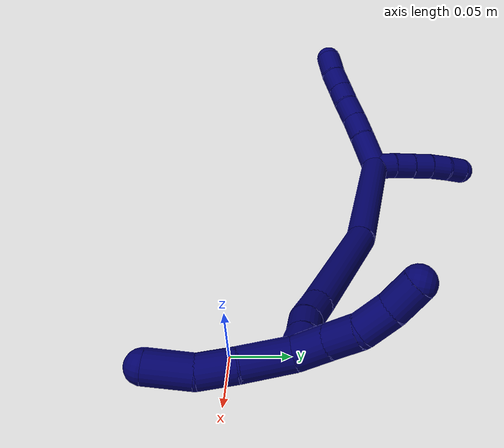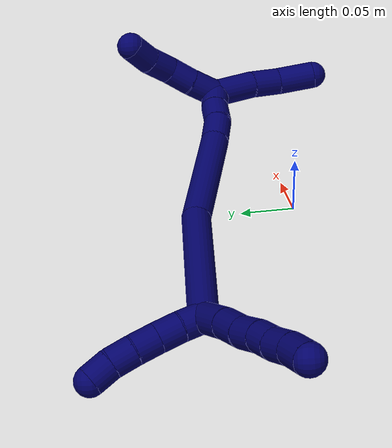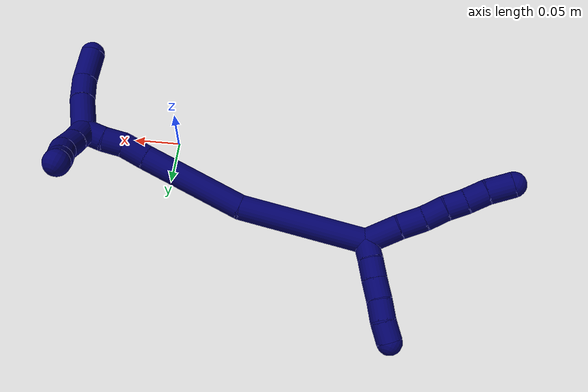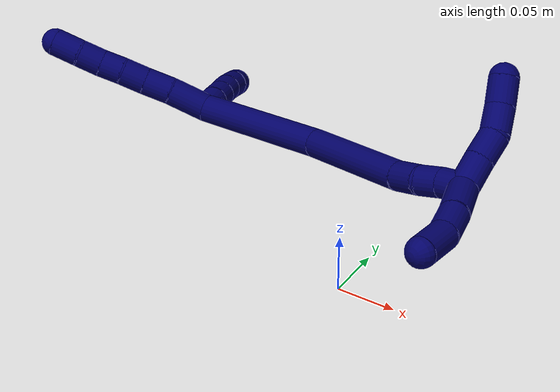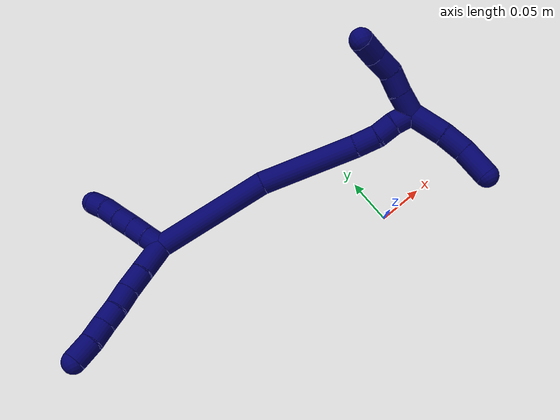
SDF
<sdf version="1.7">
 <world name="default">
  <model name="7">
   <static>0</static>
   <link name="7">
    <collision name="collision-cylinder-e_1_2_8">
     <pose>-0.013912 -0.005149 -0.010027 2.66721 -0.88986 -2.20315</pose>
     <geometry><cylinder><radius>0.0125</radius><length>0.035811</length></cylinder></geometry>
     <surface>
      <friction><ode><mu>1.16</mu><mu2>1.16</mu2><slip1>0</slip1><slip2>0</slip2></ode></friction>
      <contact><ode><kp>1e+06</kp><kd>1</kd><max_vel>0</max_vel><min_depth>0.001</min_depth></ode></contact>
     </surface>
    </collision>
    <visual name="visual-cylinder-e_1_2_8">
     <pose>-0.013912 -0.005149 -0.010027 2.66721 -0.88986 -2.20315</pose>
     <geometry><cylinder><radius>0.0125</radius><length>0.035811</length></cylinder></geometry>
     <material><ambient>0.003922 0 0.403922 1</ambient></material>
    </visual>
    <collision name="collision-cylinder-e_2_8_9">
     <pose>-0.038042 -0.012663 -0.026885 2.80829 -0.955085 -2.51304</pose>
     <geometry><cylinder><radius>0.0125</radius><length>0.025032</length></cylinder></geometry>
     <surface>
      <friction><ode><mu>1.16</mu><mu2>1.16</mu2><slip1>0</slip1><slip2>0</slip2></ode></friction>
      <contact><ode><kp>1e+06</kp><kd>1</kd><max_vel>0</max_vel><min_depth>0.001</min_depth></ode></contact>
     </surface>
    </collision>
    <visual name="visual-cylinder-e_2_8_9">
     <pose>-0.038042 -0.012663 -0.026885 2.80829 -0.955085 -2.51304</pose>
     <geometry><cylinder><radius>0.0125</radius><length>0.025032</length></cylinder></geometry>
     <material><ambient>0.003922 0 0.403922 1</ambient></material>
    </visual>
    <collision name="collision-cylinder-e_3_9_10">
     <pose>-0.056572 -0.018139 -0.040495 2.71134 -0.839453 -2.23091</pose>
     <geometry><cylinder><radius>0.0125</radius><length>0.022337</length></cylinder></geometry>
     <surface>
      <friction><ode><mu>1.16</mu><mu2>1.16</mu2><slip1>0</slip1><slip2>0</slip2></ode></friction>
      <contact><ode><kp>1e+06</kp><kd>1</kd><max_vel>0</max_vel><min_depth>0.001</min_depth></ode></contact>
     </surface>
    </collision>
    <visual name="visual-cylinder-e_3_9_10">
     <pose>-0.056572 -0.018139 -0.040495 2.71134 -0.839453 -2.23091</pose>
     <geometry><cylinder><radius>0.0125</radius><length>0.022337</length></cylinder></geometry>
     <material><ambient>0.003922 0 0.403922 1</ambient></material>
    </visual>
    <collision name="collision-cylinder-e_4_10_11">
     <pose>-0.073154 -0.023059 -0.052784 2.82439 -0.959207 -2.54491</pose>
     <geometry><cylinder><radius>0.0125</radius><length>0.020201</length></cylinder></geometry>
     <surface>
      <friction><ode><mu>1.16</mu><mu2>1.16</mu2><slip1>0</slip1><slip2>0</slip2></ode></friction>
      <contact><ode><kp>1e+06</kp><kd>1</kd><max_vel>0</max_vel><min_depth>0.001</min_depth></ode></contact>
     </surface>
    </collision>
    <visual name="visual-cylinder-e_4_10_11">
     <pose>-0.073154 -0.023059 -0.052784 2.82439 -0.959207 -2.54491</pose>
     <geometry><cylinder><radius>0.0125</radius><length>0.020201</length></cylinder></geometry>
     <material><ambient>0.003922 0 0.403922 1</ambient></material>
    </visual>
    <collision name="collision-cylinder-e_5_11_12">
     <pose>-0.089661 -0.027874 -0.064545 2.6933 -0.870899 -2.23031</pose>
     <geometry><cylinder><radius>0.0125</radius><length>0.021536</length></cylinder></geometry>
     <surface>
      <friction><ode><mu>1.16</mu><mu2>1.16</mu2><slip1>0</slip1><slip2>0</slip2></ode></friction>
      <contact><ode><kp>1e+06</kp><kd>1</kd><max_vel>0</max_vel><min_depth>0.001</min_depth></ode></contact>
     </surface>
    </collision>
    <visual name="visual-cylinder-e_5_11_12">
     <pose>-0.089661 -0.027874 -0.064545 2.6933 -0.870899 -2.23031</pose>
     <geometry><cylinder><radius>0.0125</radius><length>0.021536</length></cylinder></geometry>
     <material><ambient>0.003922 0 0.403922 1</ambient></material>
    </visual>
    <collision name="collision-cylinder-e_6_12_6">
     <pose>-0.108607 -0.033514 -0.076766 2.7262 -1.02359 -2.42377</pose>
     <geometry><cylinder><radius>0.0125</radius><length>0.025083</length></cylinder></geometry>
     <surface>
      <friction><ode><mu>1.16</mu><mu2>1.16</mu2><slip1>0</slip1><slip2>0</slip2></ode></friction>
      <contact><ode><kp>1e+06</kp><kd>1</kd><max_vel>0</max_vel><min_depth>0.001</min_depth></ode></contact>
     </surface>
    </collision>
    <visual name="visual-cylinder-e_6_12_6">
     <pose>-0.108607 -0.033514 -0.076766 2.7262 -1.02359 -2.42377</pose>
     <geometry><cylinder><radius>0.0125</radius><length>0.025083</length></cylinder></geometry>
     <material><ambient>0.003922 0 0.403922 1</ambient></material>
    </visual>
    <collision name="collision-cylinder-e_1_2_13">
     <pose>-0.005074 0.000542 0.0086 -0.062931 -0.532153 0.017156</pose>
     <geometry><cylinder><radius>0.0125</radius><length>0.02</length></cylinder></geometry>
     <surface>
      <friction><ode><mu>1.16</mu><mu2>1.16</mu2><slip1>0</slip1><slip2>0</slip2></ode></friction>
      <contact><ode><kp>1e+06</kp><kd>1</kd><max_vel>0</max_vel><min_depth>0.001</min_depth></ode></contact>
     </surface>
    </collision>
    <visual name="visual-cylinder-e_1_2_13">
     <pose>-0.005074 0.000542 0.0086 -0.062931 -0.532153 0.017156</pose>
     <geometry><cylinder><radius>0.0125</radius><length>0.02</length></cylinder></geometry>
     <material><ambient>0.003922 0 0.403922 1</ambient></material>
    </visual>
    <collision name="collision-cylinder-e_2_13_14">
     <pose>-0.014864 0.002569 0.025892 -0.16925 -0.491101 0.042511</pose>
     <geometry><cylinder><radius>0.0125</radius><length>0.02</length></cylinder></geometry>
     <surface>
      <friction><ode><mu>1.16</mu><mu2>1.16</mu2><slip1>0</slip1><slip2>0</slip2></ode></friction>
      <contact><ode><kp>1e+06</kp><kd>1</kd><max_vel>0</max_vel><min_depth>0.001</min_depth></ode></contact>
     </surface>
    </collision>
    <visual name="visual-cylinder-e_2_13_14">
     <pose>-0.014864 0.002569 0.025892 -0.16925 -0.491101 0.042511</pose>
     <geometry><cylinder><radius>0.0125</radius><length>0.02</length></cylinder></geometry>
     <material><ambient>0.003922 0 0.403922 1</ambient></material>
    </visual>
    <collision name="collision-cylinder-e_3_14_15">
     <pose>-0.0246 0.00564 0.043087 -0.184304 -0.525947 0.049747</pose>
     <geometry><cylinder><radius>0.0125</radius><length>0.02</length></cylinder></geometry>
     <surface>
      <friction><ode><mu>1.16</mu><mu2>1.16</mu2><slip1>0</slip1><slip2>0</slip2></ode></friction>
      <contact><ode><kp>1e+06</kp><kd>1</kd><max_vel>0</max_vel><min_depth>0.001</min_depth></ode></contact>
     </surface>
    </collision>
    <visual name="visual-cylinder-e_3_14_15">
     <pose>-0.0246 0.00564 0.043087 -0.184304 -0.525947 0.049747</pose>
     <geometry><cylinder><radius>0.0125</radius><length>0.02</length></cylinder></geometry>
     <material><ambient>0.003922 0 0.403922 1</ambient></material>
    </visual>
    <collision name="collision-cylinder-e_4_15_16">
     <pose>-0.034177 0.009641 0.060156 -0.274947 -0.473124 0.066679</pose>
     <geometry><cylinder><radius>0.0125</radius><length>0.02</length></cylinder></geometry>
     <surface>
      <friction><ode><mu>1.16</mu><mu2>1.16</mu2><slip1>0</slip1><slip2>0</slip2></ode></friction>
      <contact><ode><kp>1e+06</kp><kd>1</kd><max_vel>0</max_vel><min_depth>0.001</min_depth></ode></contact>
     </surface>
    </collision>
    <visual name="visual-cylinder-e_4_15_16">
     <pose>-0.034177 0.009641 0.060156 -0.274947 -0.473124 0.066679</pose>
     <geometry><cylinder><radius>0.0125</radius><length>0.02</length></cylinder></geometry>
     <material><ambient>0.003922 0 0.403922 1</ambient></material>
    </visual>
    <collision name="collision-cylinder-e_5_16_5">
     <pose>-0.044116 0.015692 0.076327 -0.445761 -0.568305 0.132194</pose>
     <geometry><cylinder><radius>0.0125</radius><length>0.02</length></cylinder></geometry>
     <surface>
      <friction><ode><mu>1.16</mu><mu2>1.16</mu2><slip1>0</slip1><slip2>0</slip2></ode></friction>
      <contact><ode><kp>1e+06</kp><kd>1</kd><max_vel>0</max_vel><min_depth>0.001</min_depth></ode></contact>
     </surface>
    </collision>
    <visual name="visual-cylinder-e_5_16_5">
     <pose>-0.044116 0.015692 0.076327 -0.445761 -0.568305 0.132194</pose>
     <geometry><cylinder><radius>0.0125</radius><length>0.02</length></cylinder></geometry>
     <material><ambient>0.003922 0 0.403922 1</ambient></material>
    </visual>
    <collision name="collision-cylinder-e_1_2_17">
     <pose>0.062415 -0.010578 0.00613 1.04557 1.37736 0.885816</pose>
     <geometry><cylinder><radius>0.0125</radius><length>0.127203</length></cylinder></geometry>
     <surface>
      <friction><ode><mu>1.16</mu><mu2>1.16</mu2><slip1>0</slip1><slip2>0</slip2></ode></friction>
      <contact><ode><kp>1e+06</kp><kd>1</kd><max_vel>0</max_vel><min_depth>0.001</min_depth></ode></contact>
     </surface>
    </collision>
    <visual name="visual-cylinder-e_1_2_17">
     <pose>0.062415 -0.010578 0.00613 1.04557 1.37736 0.885816</pose>
     <geometry><cylinder><radius>0.0125</radius><length>0.127203</length></cylinder></geometry>
     <material><ambient>0.003922 0 0.403922 1</ambient></material>
    </visual>
    <collision name="collision-cylinder-e_2_17_18">
     <pose>0.176136 -0.033237 0.006174 2.03749 1.313 1.79286</pose>
     <geometry><cylinder><radius>0.0125</radius><length>0.106118</length></cylinder></geometry>
     <surface>
      <friction><ode><mu>1.16</mu><mu2>1.16</mu2><slip1>0</slip1><slip2>0</slip2></ode></friction>
      <contact><ode><kp>1e+06</kp><kd>1</kd><max_vel>0</max_vel><min_depth>0.001</min_depth></ode></contact>
     </surface>
    </collision>
    <visual name="visual-cylinder-e_2_17_18">
     <pose>0.176136 -0.033237 0.006174 2.03749 1.313 1.79286</pose>
     <geometry><cylinder><radius>0.0125</radius><length>0.106118</length></cylinder></geometry>
     <material><ambient>0.003922 0 0.403922 1</ambient></material>
    </visual>
    <collision name="collision-cylinder-e_3_18_19">
     <pose>0.23915 -0.049776 -0.001088 1.82867 1.19568 1.44765</pose>
     <geometry><cylinder><radius>0.0125</radius><length>0.025165</length></cylinder></geometry>
     <surface>
      <friction><ode><mu>1.16</mu><mu2>1.16</mu2><slip1>0</slip1><slip2>0</slip2></ode></friction>
      <contact><ode><kp>1e+06</kp><kd>1</kd><max_vel>0</max_vel><min_depth>0.001</min_depth></ode></contact>
     </surface>
    </collision>
    <visual name="visual-cylinder-e_3_18_19">
     <pose>0.23915 -0.049776 -0.001088 1.82867 1.19568 1.44765</pose>
     <geometry><cylinder><radius>0.0125</radius><length>0.025165</length></cylinder></geometry>
     <material><ambient>0.003922 0 0.403922 1</ambient></material>
    </visual>
    <collision name="collision-cylinder-e_4_19_20">
     <pose>0.260559 -0.057542 -0.000626 1.11131 1.20717 0.80893</pose>
     <geometry><cylinder><radius>0.0125</radius><length>0.020761</length></cylinder></geometry>
     <surface>
      <friction><ode><mu>1.16</mu><mu2>1.16</mu2><slip1>0</slip1><slip2>0</slip2></ode></friction>
      <contact><ode><kp>1e+06</kp><kd>1</kd><max_vel>0</max_vel><min_depth>0.001</min_depth></ode></contact>
     </surface>
    </collision>
    <visual name="visual-cylinder-e_4_19_20">
     <pose>0.260559 -0.057542 -0.000626 1.11131 1.20717 0.80893</pose>
     <geometry><cylinder><radius>0.0125</radius><length>0.020761</length></cylinder></geometry>
     <material><ambient>0.003922 0 0.403922 1</ambient></material>
    </visual>
    <collision name="collision-cylinder-e_5_20_1">
     <pose>0.280249 -0.063665 0.001004 1.57328 1.29623 1.29862</pose>
     <geometry><cylinder><radius>0.0125</radius><length>0.020752</length></cylinder></geometry>
     <surface>
      <friction><ode><mu>1.16</mu><mu2>1.16</mu2><slip1>0</slip1><slip2>0</slip2></ode></friction>
      <contact><ode><kp>1e+06</kp><kd>1</kd><max_vel>0</max_vel><min_depth>0.001</min_depth></ode></contact>
     </surface>
    </collision>
    <visual name="visual-cylinder-e_5_20_1">
     <pose>0.280249 -0.063665 0.001004 1.57328 1.29623 1.29862</pose>
     <geometry><cylinder><radius>0.0125</radius><length>0.020752</length></cylinder></geometry>
     <material><ambient>0.003922 0 0.403922 1</ambient></material>
    </visual>
    <collision name="collision-cylinder-e_1_1_21">
     <pose>0.287494 -0.074262 0.011718 0.627944 -0.204119 -0.066487</pose>
     <geometry><cylinder><radius>0.0125</radius><length>0.02706</length></cylinder></geometry>
     <surface>
      <friction><ode><mu>1.16</mu><mu2>1.16</mu2><slip1>0</slip1><slip2>0</slip2></ode></friction>
      <contact><ode><kp>1e+06</kp><kd>1</kd><max_vel>0</max_vel><min_depth>0.001</min_depth></ode></contact>
     </surface>
    </collision>
    <visual name="visual-cylinder-e_1_1_21">
     <pose>0.287494 -0.074262 0.011718 0.627944 -0.204119 -0.066487</pose>
     <geometry><cylinder><radius>0.0125</radius><length>0.02706</length></cylinder></geometry>
     <material><ambient>0.003922 0 0.403922 1</ambient></material>
    </visual>
    <collision name="collision-cylinder-e_2_21_22">
     <pose>0.28315 -0.089445 0.031685 0.674989 -0.134419 -0.047233</pose>
     <geometry><cylinder><radius>0.0125</radius><length>0.0239</length></cylinder></geometry>
     <surface>
      <friction><ode><mu>1.16</mu><mu2>1.16</mu2><slip1>0</slip1><slip2>0</slip2></ode></friction>
      <contact><ode><kp>1e+06</kp><kd>1</kd><max_vel>0</max_vel><min_depth>0.001</min_depth></ode></contact>
     </surface>
    </collision>
    <visual name="visual-cylinder-e_2_21_22">
     <pose>0.28315 -0.089445 0.031685 0.674989 -0.134419 -0.047233</pose>
     <geometry><cylinder><radius>0.0125</radius><length>0.0239</length></cylinder></geometry>
     <material><ambient>0.003922 0 0.403922 1</ambient></material>
    </visual>
    <collision name="collision-cylinder-e_3_22_23">
     <pose>0.276029 -0.104378 0.048869 0.759189 -0.467163 -0.189269</pose>
     <geometry><cylinder><radius>0.0125</radius><length>0.024511</length></cylinder></geometry>
     <surface>
      <friction><ode><mu>1.16</mu><mu2>1.16</mu2><slip1>0</slip1><slip2>0</slip2></ode></friction>
      <contact><ode><kp>1e+06</kp><kd>1</kd><max_vel>0</max_vel><min_depth>0.001</min_depth></ode></contact>
     </surface>
    </collision>
    <visual name="visual-cylinder-e_3_22_23">
     <pose>0.276029 -0.104378 0.048869 0.759189 -0.467163 -0.189269</pose>
     <geometry><cylinder><radius>0.0125</radius><length>0.024511</length></cylinder></geometry>
     <material><ambient>0.003922 0 0.403922 1</ambient></material>
    </visual>
    <collision name="collision-cylinder-e_4_23_4">
     <pose>0.265249 -0.120993 0.06315 0.961118 -0.443257 -0.233867</pose>
     <geometry><cylinder><radius>0.0125</radius><length>0.024529</length></cylinder></geometry>
     <surface>
      <friction><ode><mu>1.16</mu><mu2>1.16</mu2><slip1>0</slip1><slip2>0</slip2></ode></friction>
      <contact><ode><kp>1e+06</kp><kd>1</kd><max_vel>0</max_vel><min_depth>0.001</min_depth></ode></contact>
     </surface>
    </collision>
    <visual name="visual-cylinder-e_4_23_4">
     <pose>0.265249 -0.120993 0.06315 0.961118 -0.443257 -0.233867</pose>
     <geometry><cylinder><radius>0.0125</radius><length>0.024529</length></cylinder></geometry>
     <material><ambient>0.003922 0 0.403922 1</ambient></material>
    </visual>
    <collision name="collision-cylinder-e_1_1_24">
     <pose>0.299967 -0.065749 -0.015669 -3.09786 0.528043 -2.98015</pose>
     <geometry><cylinder><radius>0.0125</radius><length>0.038625</length></cylinder></geometry>
     <surface>
      <friction><ode><mu>1.16</mu><mu2>1.16</mu2><slip1>0</slip1><slip2>0</slip2></ode></friction>
      <contact><ode><kp>1e+06</kp><kd>1</kd><max_vel>0</max_vel><min_depth>0.001</min_depth></ode></contact>
     </surface>
    </collision>
    <visual name="visual-cylinder-e_1_1_24">
     <pose>0.299967 -0.065749 -0.015669 -3.09786 0.528043 -2.98015</pose>
     <geometry><cylinder><radius>0.0125</radius><length>0.038625</length></cylinder></geometry>
     <material><ambient>0.003922 0 0.403922 1</ambient></material>
    </visual>
    <collision name="collision-cylinder-e_2_24_25">
     <pose>0.315397 -0.063467 -0.044678 -3.01647 0.429681 -2.58246</pose>
     <geometry><cylinder><radius>0.0125</radius><length>0.027368</length></cylinder></geometry>
     <surface>
      <friction><ode><mu>1.16</mu><mu2>1.16</mu2><slip1>0</slip1><slip2>0</slip2></ode></friction>
      <contact><ode><kp>1e+06</kp><kd>1</kd><max_vel>0</max_vel><min_depth>0.001</min_depth></ode></contact>
     </surface>
    </collision>
    <visual name="visual-cylinder-e_2_24_25">
     <pose>0.315397 -0.063467 -0.044678 -3.01647 0.429681 -2.58246</pose>
     <geometry><cylinder><radius>0.0125</radius><length>0.027368</length></cylinder></geometry>
     <material><ambient>0.003922 0 0.403922 1</ambient></material>
    </visual>
    <collision name="collision-cylinder-e_3_25_3">
     <pose>0.324642 -0.062523 -0.07364 3.105 0.209981 2.79776</pose>
     <geometry><cylinder><radius>0.0125</radius><length>0.034008</length></cylinder></geometry>
     <surface>
      <friction><ode><mu>1.16</mu><mu2>1.16</mu2><slip1>0</slip1><slip2>0</slip2></ode></friction>
      <contact><ode><kp>1e+06</kp><kd>1</kd><max_vel>0</max_vel><min_depth>0.001</min_depth></ode></contact>
     </surface>
    </collision>
    <visual name="visual-cylinder-e_3_25_3">
     <pose>0.324642 -0.062523 -0.07364 3.105 0.209981 2.79776</pose>
     <geometry><cylinder><radius>0.0125</radius><length>0.034008</length></cylinder></geometry>
     <material><ambient>0.003922 0 0.403922 1</ambient></material>
    </visual>
    <collision name="collision-sphere-3">
     <pose>0.328186 -0.063131 -0.090259 0 -0 0</pose>
     <geometry><sphere><radius>0.0125</radius></sphere></geometry>
     <surface>
      <friction><ode><mu>1.16</mu><mu2>1.16</mu2><slip1>0</slip1><slip2>0</slip2></ode></friction>
      <contact><ode><kp>1e+06</kp><kd>1</kd><max_vel>0</max_vel><min_depth>0.001</min_depth></ode></contact>
     </surface>
    </collision>
    <visual name="visual-sphere-3">
     <pose>0.328186 -0.063131 -0.090259 0 -0 0</pose>
     <geometry><sphere><radius>0.0125</radius></sphere></geometry>
     <material><ambient>0.003922 0 0.403922 1</ambient></material>
    </visual>
    <collision name="collision-sphere-25">
     <pose>0.321098 -0.061915 -0.05702 0 -0 0</pose>
     <geometry><sphere><radius>0.0125</radius></sphere></geometry>
     <surface>
      <friction><ode><mu>1.16</mu><mu2>1.16</mu2><slip1>0</slip1><slip2>0</slip2></ode></friction>
      <contact><ode><kp>1e+06</kp><kd>1</kd><max_vel>0</max_vel><min_depth>0.001</min_depth></ode></contact>
     </surface>
    </collision>
    <visual name="visual-sphere-25">
     <pose>0.321098 -0.061915 -0.05702 0 -0 0</pose>
     <geometry><sphere><radius>0.0125</radius></sphere></geometry>
     <material><ambient>0.003922 0 0.403922 1</ambient></material>
    </visual>
    <collision name="collision-sphere-24">
     <pose>0.309697 -0.06502 -0.032335 0 -0 0</pose>
     <geometry><sphere><radius>0.0125</radius></sphere></geometry>
     <surface>
      <friction><ode><mu>1.16</mu><mu2>1.16</mu2><slip1>0</slip1><slip2>0</slip2></ode></friction>
      <contact><ode><kp>1e+06</kp><kd>1</kd><max_vel>0</max_vel><min_depth>0.001</min_depth></ode></contact>
     </surface>
    </collision>
    <visual name="visual-sphere-24">
     <pose>0.309697 -0.06502 -0.032335 0 -0 0</pose>
     <geometry><sphere><radius>0.0125</radius></sphere></geometry>
     <material><ambient>0.003922 0 0.403922 1</ambient></material>
    </visual>
    <collision name="collision-sphere-4">
     <pose>0.259989 -0.130076 0.069494 0 -0 0</pose>
     <geometry><sphere><radius>0.0125</radius></sphere></geometry>
     <surface>
      <friction><ode><mu>1.16</mu><mu2>1.16</mu2><slip1>0</slip1><slip2>0</slip2></ode></friction>
      <contact><ode><kp>1e+06</kp><kd>1</kd><max_vel>0</max_vel><min_depth>0.001</min_depth></ode></contact>
     </surface>
    </collision>
    <visual name="visual-sphere-4">
     <pose>0.259989 -0.130076 0.069494 0 -0 0</pose>
     <geometry><sphere><radius>0.0125</radius></sphere></geometry>
     <material><ambient>0.003922 0 0.403922 1</ambient></material>
    </visual>
    <collision name="collision-sphere-23">
     <pose>0.270509 -0.11191 0.056806 0 -0 0</pose>
     <geometry><sphere><radius>0.0125</radius></sphere></geometry>
     <surface>
      <friction><ode><mu>1.16</mu><mu2>1.16</mu2><slip1>0</slip1><slip2>0</slip2></ode></friction>
      <contact><ode><kp>1e+06</kp><kd>1</kd><max_vel>0</max_vel><min_depth>0.001</min_depth></ode></contact>
     </surface>
    </collision>
    <visual name="visual-sphere-23">
     <pose>0.270509 -0.11191 0.056806 0 -0 0</pose>
     <geometry><sphere><radius>0.0125</radius></sphere></geometry>
     <material><ambient>0.003922 0 0.403922 1</ambient></material>
    </visual>
    <collision name="collision-sphere-22">
     <pose>0.281548 -0.096845 0.040931 0 -0 0</pose>
     <geometry><sphere><radius>0.0125</radius></sphere></geometry>
     <surface>
      <friction><ode><mu>1.16</mu><mu2>1.16</mu2><slip1>0</slip1><slip2>0</slip2></ode></friction>
      <contact><ode><kp>1e+06</kp><kd>1</kd><max_vel>0</max_vel><min_depth>0.001</min_depth></ode></contact>
     </surface>
    </collision>
    <visual name="visual-sphere-22">
     <pose>0.281548 -0.096845 0.040931 0 -0 0</pose>
     <geometry><sphere><radius>0.0125</radius></sphere></geometry>
     <material><ambient>0.003922 0 0.403922 1</ambient></material>
    </visual>
    <collision name="collision-sphere-21">
     <pose>0.284751 -0.082045 0.02244 0 -0 0</pose>
     <geometry><sphere><radius>0.0125</radius></sphere></geometry>
     <surface>
      <friction><ode><mu>1.16</mu><mu2>1.16</mu2><slip1>0</slip1><slip2>0</slip2></ode></friction>
      <contact><ode><kp>1e+06</kp><kd>1</kd><max_vel>0</max_vel><min_depth>0.001</min_depth></ode></contact>
     </surface>
    </collision>
    <visual name="visual-sphere-21">
     <pose>0.284751 -0.082045 0.02244 0 -0 0</pose>
     <geometry><sphere><radius>0.0125</radius></sphere></geometry>
     <material><ambient>0.003922 0 0.403922 1</ambient></material>
    </visual>
    <collision name="collision-sphere-1">
     <pose>0.290236 -0.066478 0.000997 0 -0 0</pose>
     <geometry><sphere><radius>0.0125</radius></sphere></geometry>
     <surface>
      <friction><ode><mu>1.16</mu><mu2>1.16</mu2><slip1>0</slip1><slip2>0</slip2></ode></friction>
      <contact><ode><kp>1e+06</kp><kd>1</kd><max_vel>0</max_vel><min_depth>0.001</min_depth></ode></contact>
     </surface>
    </collision>
    <visual name="visual-sphere-1">
     <pose>0.290236 -0.066478 0.000997 0 -0 0</pose>
     <geometry><sphere><radius>0.0125</radius></sphere></geometry>
     <material><ambient>0.003922 0 0.403922 1</ambient></material>
    </visual>
    <collision name="collision-sphere-12">
     <pose>-0.097897 -0.03088 -0.070796 0 -0 0</pose>
     <geometry><sphere><radius>0.0125</radius></sphere></geometry>
     <surface>
      <friction><ode><mu>1.16</mu><mu2>1.16</mu2><slip1>0</slip1><slip2>0</slip2></ode></friction>
      <contact><ode><kp>1e+06</kp><kd>1</kd><max_vel>0</max_vel><min_depth>0.001</min_depth></ode></contact>
     </surface>
    </collision>
    <visual name="visual-sphere-12">
     <pose>-0.097897 -0.03088 -0.070796 0 -0 0</pose>
     <geometry><sphere><radius>0.0125</radius></sphere></geometry>
     <material><ambient>0.003922 0 0.403922 1</ambient></material>
    </visual>
    <collision name="collision-sphere-11">
     <pose>-0.081424 -0.024868 -0.058295 0 -0 0</pose>
     <geometry><sphere><radius>0.0125</radius></sphere></geometry>
     <surface>
      <friction><ode><mu>1.16</mu><mu2>1.16</mu2><slip1>0</slip1><slip2>0</slip2></ode></friction>
      <contact><ode><kp>1e+06</kp><kd>1</kd><max_vel>0</max_vel><min_depth>0.001</min_depth></ode></contact>
     </surface>
    </collision>
    <visual name="visual-sphere-11">
     <pose>-0.081424 -0.024868 -0.058295 0 -0 0</pose>
     <geometry><sphere><radius>0.0125</radius></sphere></geometry>
     <material><ambient>0.003922 0 0.403922 1</ambient></material>
    </visual>
    <collision name="collision-sphere-10">
     <pose>-0.064885 -0.02125 -0.047274 0 -0 0</pose>
     <geometry><sphere><radius>0.0125</radius></sphere></geometry>
     <surface>
      <friction><ode><mu>1.16</mu><mu2>1.16</mu2><slip1>0</slip1><slip2>0</slip2></ode></friction>
      <contact><ode><kp>1e+06</kp><kd>1</kd><max_vel>0</max_vel><min_depth>0.001</min_depth></ode></contact>
     </surface>
    </collision>
    <visual name="visual-sphere-10">
     <pose>-0.064885 -0.02125 -0.047274 0 -0 0</pose>
     <geometry><sphere><radius>0.0125</radius></sphere></geometry>
     <material><ambient>0.003922 0 0.403922 1</ambient></material>
    </visual>
    <collision name="collision-sphere-9">
     <pose>-0.04826 -0.015028 -0.033716 0 -0 0</pose>
     <geometry><sphere><radius>0.0125</radius></sphere></geometry>
     <surface>
      <friction><ode><mu>1.16</mu><mu2>1.16</mu2><slip1>0</slip1><slip2>0</slip2></ode></friction>
      <contact><ode><kp>1e+06</kp><kd>1</kd><max_vel>0</max_vel><min_depth>0.001</min_depth></ode></contact>
     </surface>
    </collision>
    <visual name="visual-sphere-9">
     <pose>-0.04826 -0.015028 -0.033716 0 -0 0</pose>
     <geometry><sphere><radius>0.0125</radius></sphere></geometry>
     <material><ambient>0.003922 0 0.403922 1</ambient></material>
    </visual>
    <collision name="collision-sphere-2">
     <geometry><sphere><radius>0.0125</radius></sphere></geometry>
     <surface>
      <friction><ode><mu>1.16</mu><mu2>1.16</mu2><slip1>0</slip1><slip2>0</slip2></ode></friction>
      <contact><ode><kp>1e+06</kp><kd>1</kd><max_vel>0</max_vel><min_depth>0.001</min_depth></ode></contact>
     </surface>
    </collision>
    <visual name="visual-sphere-2">
     <geometry><sphere><radius>0.0125</radius></sphere></geometry>
     <material><ambient>0.003922 0 0.403922 1</ambient></material>
    </visual>
    <collision name="collision-sphere-19">
     <pose>0.250857 -0.054233 -0.002264 0 -0 0</pose>
     <geometry><sphere><radius>0.0125</radius></sphere></geometry>
     <surface>
      <friction><ode><mu>1.16</mu><mu2>1.16</mu2><slip1>0</slip1><slip2>0</slip2></ode></friction>
      <contact><ode><kp>1e+06</kp><kd>1</kd><max_vel>0</max_vel><min_depth>0.001</min_depth></ode></contact>
     </surface>
    </collision>
    <visual name="visual-sphere-19">
     <pose>0.250857 -0.054233 -0.002264 0 -0 0</pose>
     <geometry><sphere><radius>0.0125</radius></sphere></geometry>
     <material><ambient>0.003922 0 0.403922 1</ambient></material>
    </visual>
    <collision name="collision-sphere-8">
     <pose>-0.027825 -0.010298 -0.020055 0 -0 0</pose>
     <geometry><sphere><radius>0.0125</radius></sphere></geometry>
     <surface>
      <friction><ode><mu>1.16</mu><mu2>1.16</mu2><slip1>0</slip1><slip2>0</slip2></ode></friction>
      <contact><ode><kp>1e+06</kp><kd>1</kd><max_vel>0</max_vel><min_depth>0.001</min_depth></ode></contact>
     </surface>
    </collision>
    <visual name="visual-sphere-8">
     <pose>-0.027825 -0.010298 -0.020055 0 -0 0</pose>
     <geometry><sphere><radius>0.0125</radius></sphere></geometry>
     <material><ambient>0.003922 0 0.403922 1</ambient></material>
    </visual>
    <collision name="collision-sphere-6">
     <pose>-0.119317 -0.036147 -0.082737 0 -0 0</pose>
     <geometry><sphere><radius>0.0125</radius></sphere></geometry>
     <surface>
      <friction><ode><mu>1.16</mu><mu2>1.16</mu2><slip1>0</slip1><slip2>0</slip2></ode></friction>
      <contact><ode><kp>1e+06</kp><kd>1</kd><max_vel>0</max_vel><min_depth>0.001</min_depth></ode></contact>
     </surface>
    </collision>
    <visual name="visual-sphere-6">
     <pose>-0.119317 -0.036147 -0.082737 0 -0 0</pose>
     <geometry><sphere><radius>0.0125</radius></sphere></geometry>
     <material><ambient>0.003922 0 0.403922 1</ambient></material>
    </visual>
    <collision name="collision-sphere-13">
     <pose>-0.010148 0.001084 0.0172 0 -0 0</pose>
     <geometry><sphere><radius>0.0125</radius></sphere></geometry>
     <surface>
      <friction><ode><mu>1.16</mu><mu2>1.16</mu2><slip1>0</slip1><slip2>0</slip2></ode></friction>
      <contact><ode><kp>1e+06</kp><kd>1</kd><max_vel>0</max_vel><min_depth>0.001</min_depth></ode></contact>
     </surface>
    </collision>
    <visual name="visual-sphere-13">
     <pose>-0.010148 0.001084 0.0172 0 -0 0</pose>
     <geometry><sphere><radius>0.0125</radius></sphere></geometry>
     <material><ambient>0.003922 0 0.403922 1</ambient></material>
    </visual>
    <collision name="collision-sphere-14">
     <pose>-0.01958 0.004055 0.034584 0 -0 0</pose>
     <geometry><sphere><radius>0.0125</radius></sphere></geometry>
     <surface>
      <friction><ode><mu>1.16</mu><mu2>1.16</mu2><slip1>0</slip1><slip2>0</slip2></ode></friction>
      <contact><ode><kp>1e+06</kp><kd>1</kd><max_vel>0</max_vel><min_depth>0.001</min_depth></ode></contact>
     </surface>
    </collision>
    <visual name="visual-sphere-14">
     <pose>-0.01958 0.004055 0.034584 0 -0 0</pose>
     <geometry><sphere><radius>0.0125</radius></sphere></geometry>
     <material><ambient>0.003922 0 0.403922 1</ambient></material>
    </visual>
    <collision name="collision-sphere-15">
     <pose>-0.02962 0.007224 0.051589 0 -0 0</pose>
     <geometry><sphere><radius>0.0125</radius></sphere></geometry>
     <surface>
      <friction><ode><mu>1.16</mu><mu2>1.16</mu2><slip1>0</slip1><slip2>0</slip2></ode></friction>
      <contact><ode><kp>1e+06</kp><kd>1</kd><max_vel>0</max_vel><min_depth>0.001</min_depth></ode></contact>
     </surface>
    </collision>
    <visual name="visual-sphere-15">
     <pose>-0.02962 0.007224 0.051589 0 -0 0</pose>
     <geometry><sphere><radius>0.0125</radius></sphere></geometry>
     <material><ambient>0.003922 0 0.403922 1</ambient></material>
    </visual>
    <collision name="collision-sphere-16">
     <pose>-0.038734 0.012058 0.068723 0 -0 0</pose>
     <geometry><sphere><radius>0.0125</radius></sphere></geometry>
     <surface>
      <friction><ode><mu>1.16</mu><mu2>1.16</mu2><slip1>0</slip1><slip2>0</slip2></ode></friction>
      <contact><ode><kp>1e+06</kp><kd>1</kd><max_vel>0</max_vel><min_depth>0.001</min_depth></ode></contact>
     </surface>
    </collision>
    <visual name="visual-sphere-16">
     <pose>-0.038734 0.012058 0.068723 0 -0 0</pose>
     <geometry><sphere><radius>0.0125</radius></sphere></geometry>
     <material><ambient>0.003922 0 0.403922 1</ambient></material>
    </visual>
    <collision name="collision-sphere-5">
     <pose>-0.049498 0.019325 0.083932 0 -0 0</pose>
     <geometry><sphere><radius>0.0125</radius></sphere></geometry>
     <surface>
      <friction><ode><mu>1.16</mu><mu2>1.16</mu2><slip1>0</slip1><slip2>0</slip2></ode></friction>
      <contact><ode><kp>1e+06</kp><kd>1</kd><max_vel>0</max_vel><min_depth>0.001</min_depth></ode></contact>
     </surface>
    </collision>
    <visual name="visual-sphere-5">
     <pose>-0.049498 0.019325 0.083932 0 -0 0</pose>
     <geometry><sphere><radius>0.0125</radius></sphere></geometry>
     <material><ambient>0.003922 0 0.403922 1</ambient></material>
    </visual>
    <collision name="collision-sphere-17">
     <pose>0.124831 -0.021156 0.01226 0 -0 0</pose>
     <geometry><sphere><radius>0.0125</radius></sphere></geometry>
     <surface>
      <friction><ode><mu>1.16</mu><mu2>1.16</mu2><slip1>0</slip1><slip2>0</slip2></ode></friction>
      <contact><ode><kp>1e+06</kp><kd>1</kd><max_vel>0</max_vel><min_depth>0.001</min_depth></ode></contact>
     </surface>
    </collision>
    <visual name="visual-sphere-17">
     <pose>0.124831 -0.021156 0.01226 0 -0 0</pose>
     <geometry><sphere><radius>0.0125</radius></sphere></geometry>
     <material><ambient>0.003922 0 0.403922 1</ambient></material>
    </visual>
    <collision name="collision-sphere-18">
     <pose>0.227442 -0.045318 8.8e-05 0 -0 0</pose>
     <geometry><sphere><radius>0.0125</radius></sphere></geometry>
     <surface>
      <friction><ode><mu>1.16</mu><mu2>1.16</mu2><slip1>0</slip1><slip2>0</slip2></ode></friction>
      <contact><ode><kp>1e+06</kp><kd>1</kd><max_vel>0</max_vel><min_depth>0.001</min_depth></ode></contact>
     </surface>
    </collision>
    <visual name="visual-sphere-18">
     <pose>0.227442 -0.045318 8.8e-05 0 -0 0</pose>
     <geometry><sphere><radius>0.0125</radius></sphere></geometry>
     <material><ambient>0.003922 0 0.403922 1</ambient></material>
    </visual>
    <collision name="collision-sphere-20">
     <pose>0.270261 -0.060852 0.001011 0 -0 0</pose>
     <geometry><sphere><radius>0.0125</radius></sphere></geometry>
     <surface>
      <friction><ode><mu>1.16</mu><mu2>1.16</mu2><slip1>0</slip1><slip2>0</slip2></ode></friction>
      <contact><ode><kp>1e+06</kp><kd>1</kd><max_vel>0</max_vel><min_depth>0.001</min_depth></ode></contact>
     </surface>
    </collision>
    <visual name="visual-sphere-20">
     <pose>0.270261 -0.060852 0.001011 0 -0 0</pose>
     <geometry><sphere><radius>0.0125</radius></sphere></geometry>
     <material><ambient>0.003922 0 0.403922 1</ambient></material>
    </visual>
    <inertial>
     <pose>0.122197 -0.035799 -0.00151 0 -0 0</pose>
     <mass>0.75</mass>
     <inertia>
      <ixx>6.9e-05</ixx>
      <ixy>0</ixy>
      <ixz>0</ixz>
      <iyy>0.000349</iyy>
      <iyz>0</iyz>
      <izz>-0.000205</izz>
     </inertia>
    </inertial>
   </link>
   <pose>-0.211283 0.125404 0.038181 -1.67757 0.049129 -0.254078</pose>
  </model>
 </world>
</sdf>
